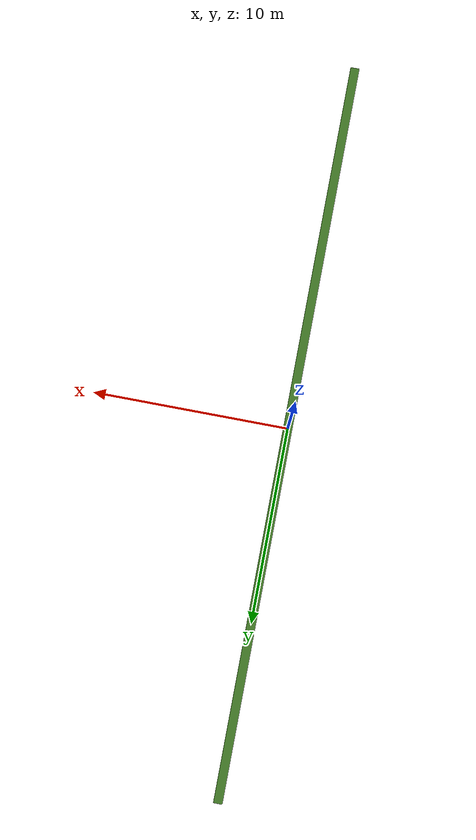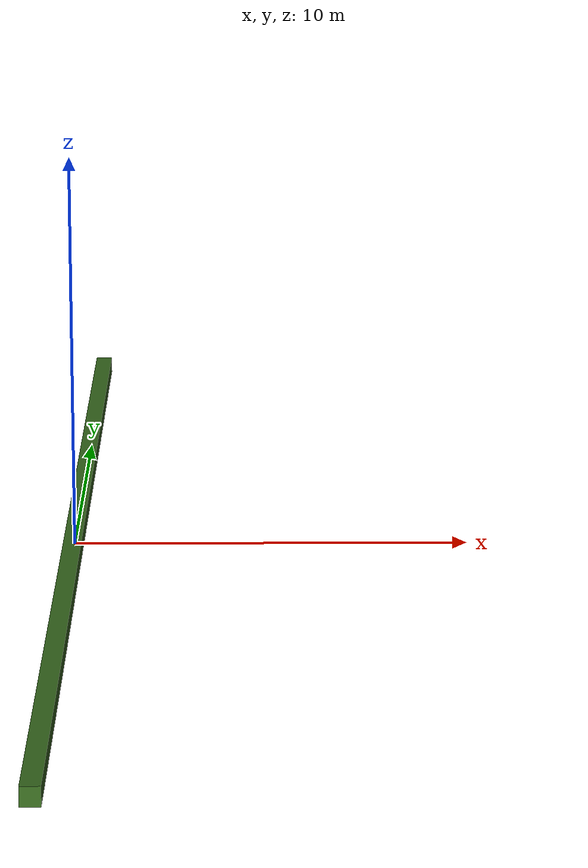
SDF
<?xml version="1.0" ?>
<sdf version="1.9">
  <model name="crop_strip">
    <static>true</static>
    <link name="link">
      <visual name="visual">
        <pose>0 0 0.225 0 0 0</pose>
        <geometry>
          <box><size>0.45 38 0.45</size></box>
        </geometry>
        <material>
          <ambient>0.12 0.22 0.06 1</ambient>
          <diffuse>0.22 0.42 0.12 1</diffuse>
          <specular>0.03 0.03 0.03 1</specular>
          <pbr>
            <metal>
              <albedo_map>model://crop_tomato/materials/textures/AG15lef1.png</albedo_map>
            </metal>
          </pbr>
        </material>
      </visual>
    </link>
  </model>
</sdf>
